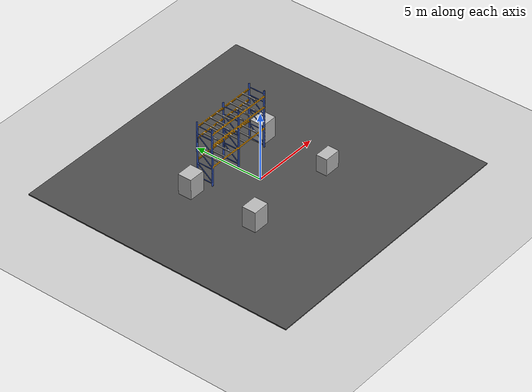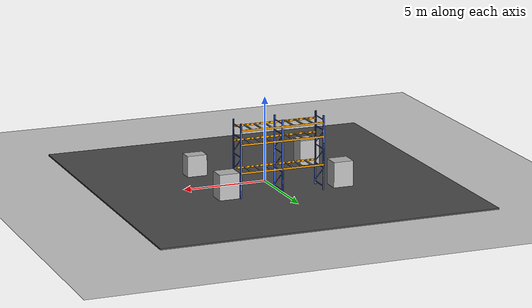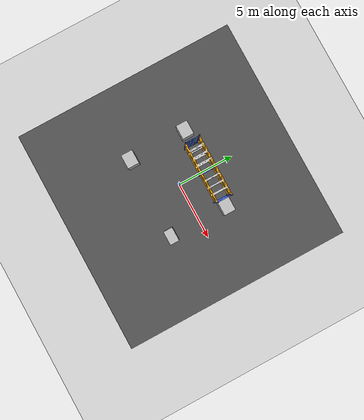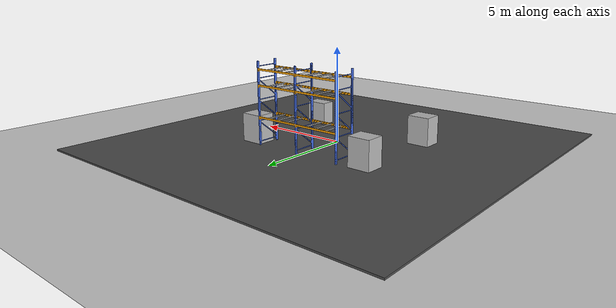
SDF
<sdf version="1.6">
 <world name="default">
  <light name="sun" type="directional">
   <pose>0 0 10 0 -0 0</pose>
   <diffuse>0.8 0.8 0.8 1</diffuse>
   <specular>0.2 0.2 0.2 1</specular>
   <attenuation>
    <range>1000</range>
    <constant>0.9</constant>
    <linear>0.01</linear>
    <quadratic>0.001</quadratic>
   </attenuation>
   <direction>-0.5 0.1 -0.9</direction>
  </light>
  <model name="ground_plane">
   <static>1</static>
   <link name="link">
    <collision name="collision">
     <geometry><plane><normal>0 0 1</normal><size>100 100</size></plane></geometry>
     <surface>
      <contact><collide_bitmask>65535</collide_bitmask></contact>
      <friction><ode><mu>100</mu><mu2>50</mu2></ode></friction>
     </surface>
    </collision>
    <visual name="visual">
     <cast_shadows>0</cast_shadows>
     <geometry><plane><normal>0 0 1</normal><size>100 100</size></plane></geometry>
     <material>
      <script><uri>file://media/materials/scripts/gazebo.material</uri><name>Gazebo/Grey</name></script>
     </material>
    </visual>
   </link>
  </model>
  <gravity>0 0 -9.8</gravity>
  <magnetic_field>6e-06 2.3e-05 -4.2e-05</magnetic_field>
  <atmosphere type="adiabatic"/>
  <physics name="default_physics" default="0" type="ode">
   <max_step_size>0.001</max_step_size>
   <real_time_factor>1</real_time_factor>
   <real_time_update_rate>1000</real_time_update_rate>
  </physics>
  <scene><ambient>0.4 0.4 0.4 1</ambient><background>0.7 0.7 0.7 1</background><shadows>1</shadows></scene>
  <spherical_coordinates>
   <surface_model>EARTH_WGS84</surface_model>
   <latitude_deg>0</latitude_deg>
   <longitude_deg>0</longitude_deg>
   <elevation>0</elevation>
   <heading_deg>0</heading_deg>
  </spherical_coordinates>
  <model name="Big box">
   <pose>-3.64036 2.48494 0.799655 1e-06 -0.000565 -1.2e-05</pose>
   <static>0</static>
   <link name="link">
    <inertial>
     <mass>40</mass>
     <inertia><ixx>1</ixx><ixy>0</ixy><ixz>0</ixz><iyy>1</iyy><iyz>0</iyz><izz>1</izz></inertia>
    </inertial>
    <collision name="collision">
     <geometry><box><size>1.2 0.8 1.5</size></box></geometry>
     <surface><contact><ode><max_vel>0.1</max_vel><min_depth>0.001</min_depth></ode></contact></surface>
    </collision>
    <visual name="visual"><geometry><mesh><uri>model://big_box/meshes/big_box.dae</uri></mesh></geometry></visual>
   </link>
  </model>
  <model name="Big box_0">
   <pose>-3.65355 -2.53503 0.799656 5e-06 -0.000568 -1.2e-05</pose>
   <static>0</static>
   <link name="link">
    <inertial>
     <mass>40</mass>
     <inertia><ixx>1</ixx><ixy>0</ixy><ixz>0</ixz><iyy>1</iyy><iyz>0</iyz><izz>1</izz></inertia>
    </inertial>
    <collision name="collision">
     <geometry><box><size>1.2 0.8 1.5</size></box></geometry>
     <surface><contact><ode><max_vel>0.1</max_vel><min_depth>0.001</min_depth></ode></contact></surface>
    </collision>
    <visual name="visual"><geometry><mesh><uri>model://big_box/meshes/big_box.dae</uri></mesh></geometry></visual>
   </link>
  </model>
  <model name="big_box3">
   <pose>3.3684 -2.57896 0.674745 6e-06 -0.000422 0</pose>
   <static>0</static>
   <link name="link">
    <inertial>
     <mass>40</mass>
     <inertia><ixx>1</ixx><ixy>0</ixy><ixz>0</ixz><iyy>1</iyy><iyz>0</iyz><izz>1</izz></inertia>
    </inertial>
    <collision name="collision">
     <geometry><box><size>1.2 0.8 1.25</size></box></geometry>
     <surface><contact><ode><max_vel>0.1</max_vel><min_depth>0.001</min_depth></ode></contact></surface>
    </collision>
    <visual name="visual">
     <geometry><mesh><uri>model://big_box3/meshes/big_box.dae</uri></mesh></geometry>
    </visual>
   </link>
  </model>
  <model name="Big box_1">
   <pose>3.34853 2.481 0.799655 2e-06 -0.000574 -1e-05</pose>
   <static>0</static>
   <link name="link">
    <inertial>
     <mass>40</mass>
     <inertia><ixx>1</ixx><ixy>0</ixy><ixz>0</ixz><iyy>1</iyy><iyz>0</iyz><izz>1</izz></inertia>
    </inertial>
    <collision name="collision">
     <geometry><box><size>1.2 0.8 1.5</size></box></geometry>
     <surface><contact><ode><max_vel>0.1</max_vel><min_depth>0.001</min_depth></ode></contact></surface>
    </collision>
    <visual name="visual"><geometry><mesh><uri>model://big_box/meshes/big_box.dae</uri></mesh></geometry></visual>
   </link>
  </model>
  <model name="asphalt_plane">
   <static>1</static>
   <link name="link">
    <collision name="collision"><geometry><box><size>20 20 0.1</size></box></geometry></collision>
    <visual name="visual">
     <cast_shadows>0</cast_shadows>
     <geometry><box><size>20 20 0.1</size></box></geometry>
     <material>
      <script>
       <uri>model://asphalt_plane/materials/scripts</uri>
       <uri>model://asphalt_plane/materials/textures</uri>
       <name>vrc/asphalt</name>
      </script>
     </material>
    </visual>
   </link>
   <pose>-0.001232 0.061371 0 0 -0 0</pose>
  </model>
  <model name="Shelves high">
   <static>1</static>
   <link name="link">
    <collision name="collision">
     <geometry>
      <mesh><uri>model://shelves_high/meshes/shelves_high_collision.dae</uri><scale>1 1.2 1.2</scale></mesh>
     </geometry>
    </collision>
    <visual name="visual">
     <geometry>
      <mesh><uri>model://shelves_high/meshes/shelves_high.dae</uri><scale>1 1.2 1.2</scale></mesh>
     </geometry>
    </visual>
   </link>
   <pose>0.138533 3.02137 0 0 -0 0</pose>
  </model>
 </world>
</sdf>
